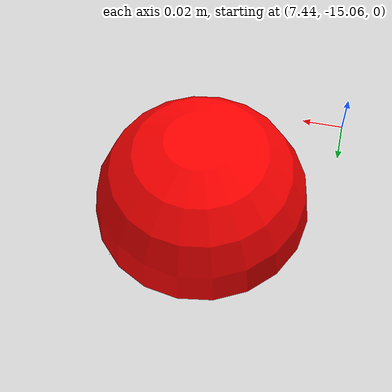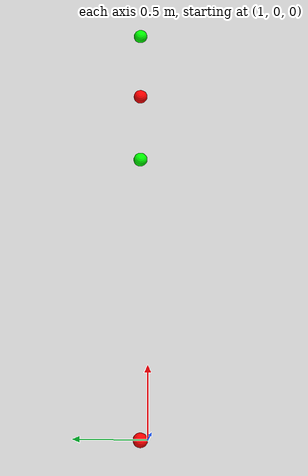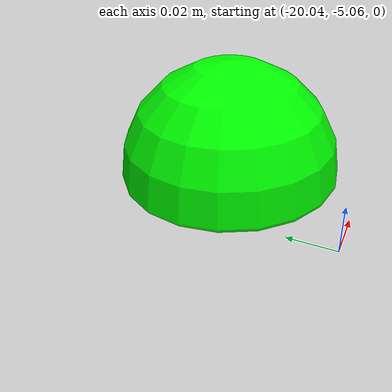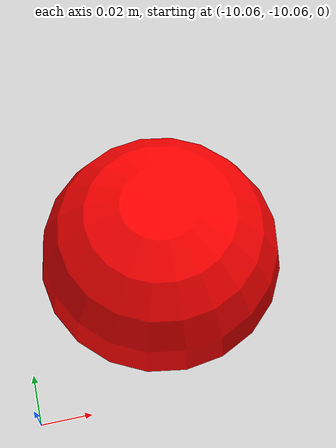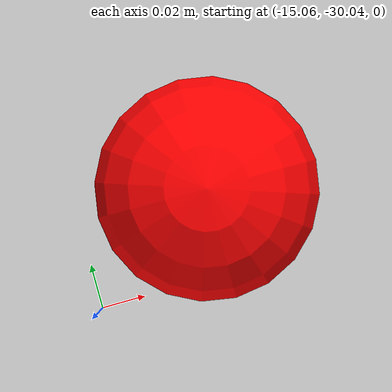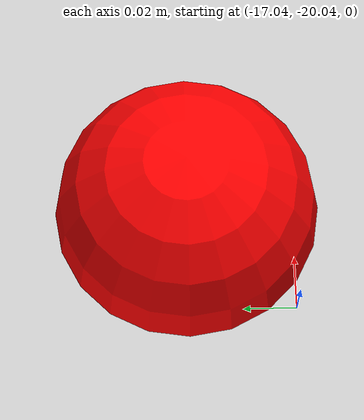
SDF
<sdf version="1.6">
 <world name="default">
  <model name="ground_plane">
   <static>1</static>
   <link name="link">
    <collision name="collision">
     <geometry><plane><normal>0 0 1</normal><size>100 100</size></plane></geometry>
     <surface><friction><ode><mu>100</mu><mu2>50</mu2></ode></friction></surface>
    </collision>
    <visual name="visual">
     <cast_shadows>0</cast_shadows>
     <geometry><plane><normal>0 0 1</normal><size>100 100</size></plane></geometry>
     <material>
      <script><uri>file://media/materials/scripts/gazebo.material</uri><name>Gazebo/Grey</name></script>
     </material>
    </visual>
   </link>
  </model>
  <light name="sun" type="directional">
   <pose>0 0 10 0 -0 0</pose>
   <diffuse>0.8 0.8 0.8 1</diffuse>
   <specular>0.1 0.1 0.1 1</specular>
   <attenuation>
    <range>1000</range>
    <constant>0.9</constant>
    <linear>0.01</linear>
    <quadratic>0.001</quadratic>
   </attenuation>
   <direction>-0.5 0.5 -1</direction>
  </light>
  <gravity>0 0 -9.8</gravity>
  <magnetic_field>6e-06 2.3e-05 -4.2e-05</magnetic_field>
  <atmosphere type="adiabatic"/>
  <physics name="default_physics" default="0" type="ode">
   <max_step_size>0.001</max_step_size>
   <real_time_factor>1</real_time_factor>
   <real_time_update_rate>1000</real_time_update_rate>
  </physics>
  <scene><ambient>0.4 0.4 0.4 1</ambient><background>0.7 0.7 0.7 1</background><shadows>1</shadows></scene>
  <spherical_coordinates>
   <surface_model>EARTH_WGS84</surface_model>
   <latitude_deg>0</latitude_deg>
   <longitude_deg>0</longitude_deg>
   <elevation>0</elevation>
   <heading_deg>0</heading_deg>
  </spherical_coordinates>
  <model name="spherered">
   <pose>1 0.05 0 0 0 0</pose>
   <link name="link">
    <inertial>
     <mass>0.25</mass>
     <inertia><ixx>0.00169</ixx><iyy>0.00169</iyy><izz>0.00169</izz><ixy>0</ixy><ixz>0</ixz><iyz>0</iyz></inertia>
    </inertial>
    <collision name="body_collision"><geometry><sphere><radius>0.05</radius></sphere></geometry></collision>
    <visual name="v1">
     <material>
      <ambient>1 0 0 1.0</ambient>
      <diffuse>1 0 0 1.0</diffuse>
      <specular>1 0 0 1.0</specular>
      <emissive>1 0 0 1.0</emissive>
     </material>
     <geometry><sphere><radius>0.05</radius></sphere></geometry>
    </visual>
   </link>
  </model>
  <model name="spheregreen">
   <pose>3 0.05 0 0 0 0</pose>
   <link name="link">
    <inertial>
     <mass>0.25</mass>
     <inertia><ixx>0.00169</ixx><iyy>0.00169</iyy><izz>0.00169</izz><ixy>0</ixy><ixz>0</ixz><iyz>0</iyz></inertia>
    </inertial>
    <collision name="body_collision"><geometry><sphere><radius>0.05</radius></sphere></geometry></collision>
    <visual name="v1">
     <material>
      <ambient>0 1 0 1.0</ambient>
      <diffuse>0 1 0 1.0</diffuse>
      <specular>0 1 0 1.0</specular>
      <emissive>0 1 0 1.0</emissive>
     </material>
     <geometry><sphere><radius>0.05</radius></sphere></geometry>
    </visual>
   </link>
  </model>
  <model name="spherered">
   <pose>3.5 0.05 0 0 0 0</pose>
   <link name="link">
    <inertial>
     <mass>0.25</mass>
     <inertia><ixx>0.00169</ixx><iyy>0.00169</iyy><izz>0.00169</izz><ixy>0</ixy><ixz>0</ixz><iyz>0</iyz></inertia>
    </inertial>
    <collision name="body_collision"><geometry><sphere><radius>0.05</radius></sphere></geometry></collision>
    <visual name="v1">
     <material>
      <ambient>1 0 0 1.0</ambient>
      <diffuse>1 0 0 1.0</diffuse>
      <specular>1 0 0 1.0</specular>
      <emissive>1 0 0 1.0</emissive>
     </material>
     <geometry><sphere><radius>0.05</radius></sphere></geometry>
    </visual>
   </link>
  </model>
  <model name="spheregreen">
   <pose>4 0.05 0 0 0 0</pose>
   <link name="link">
    <inertial>
     <mass>0.25</mass>
     <inertia><ixx>0.00169</ixx><iyy>0.00169</iyy><izz>0.00169</izz><ixy>0</ixy><ixz>0</ixz><iyz>0</iyz></inertia>
    </inertial>
    <collision name="body_collision"><geometry><sphere><radius>0.05</radius></sphere></geometry></collision>
    <visual name="v1">
     <material>
      <ambient>0 1 0 1.0</ambient>
      <diffuse>0 1 0 1.0</diffuse>
      <specular>0 1 0 1.0</specular>
      <emissive>0 1 0 1.0</emissive>
     </material>
     <geometry><sphere><radius>0.05</radius></sphere></geometry>
    </visual>
   </link>
  </model>
  <model name="spheregreen">
   <pose>-20 -5 0.001 0 0 0</pose>
   <link name="link">
    <inertial>
     <mass>0.25</mass>
     <inertia><ixx>0.00169</ixx><iyy>0.00169</iyy><izz>0.00169</izz><ixy>0</ixy><ixz>0</ixz><iyz>0</iyz></inertia>
    </inertial>
    <collision name="body_collision"><geometry><sphere><radius>0.05</radius></sphere></geometry></collision>
    <visual name="v1">
     <material>
      <ambient>0 1 0 1.0</ambient>
      <diffuse>0 1 0 1.0</diffuse>
      <specular>0 1 0 1.0</specular>
      <emissive>0 1 0 1.0</emissive>
     </material>
     <geometry><sphere><radius>0.05</radius></sphere></geometry>
    </visual>
   </link>
  </model>
  <model name="spheregreen">
   <pose>-20 -5 0.001 0 0 0</pose>
   <link name="link">
    <inertial>
     <mass>0.25</mass>
     <inertia><ixx>0.00169</ixx><iyy>0.00169</iyy><izz>0.00169</izz><ixy>0</ixy><ixz>0</ixz><iyz>0</iyz></inertia>
    </inertial>
    <collision name="body_collision"><geometry><sphere><radius>0.05</radius></sphere></geometry></collision>
    <visual name="v1">
     <material>
      <ambient>0 1 0 1.0</ambient>
      <diffuse>0 1 0 1.0</diffuse>
      <specular>0 1 0 1.0</specular>
      <emissive>0 1 0 1.0</emissive>
     </material>
     <geometry><sphere><radius>0.05</radius></sphere></geometry>
    </visual>
   </link>
  </model>
  <model name="spherered">
   <pose>-17 -20 0 0 0 0</pose>
   <link name="link">
    <inertial>
     <mass>0.25</mass>
     <inertia><ixx>0.00169</ixx><iyy>0.00169</iyy><izz>0.00169</izz><ixy>0</ixy><ixz>0</ixz><iyz>0</iyz></inertia>
    </inertial>
    <collision name="body_collision"><geometry><sphere><radius>0.05</radius></sphere></geometry></collision>
    <visual name="v1">
     <material>
      <ambient>1 0 0 1.0</ambient>
      <diffuse>1 0 0 1.0</diffuse>
      <specular>1 0 0 1.0</specular>
      <emissive>1 0 0 1.0</emissive>
     </material>
     <geometry><sphere><radius>0.05</radius></sphere></geometry>
    </visual>
   </link>
  </model>
  <model name="spheregreen">
   <pose>10 0.05 0 0 0 0</pose>
   <link name="link">
    <inertial>
     <mass>0.25</mass>
     <inertia><ixx>0.00169</ixx><iyy>0.00169</iyy><izz>0.00169</izz><ixy>0</ixy><ixz>0</ixz><iyz>0</iyz></inertia>
    </inertial>
    <collision name="body_collision"><geometry><sphere><radius>0.05</radius></sphere></geometry></collision>
    <visual name="v1">
     <material>
      <ambient>0 1 0 1.0</ambient>
      <diffuse>0 1 0 1.0</diffuse>
      <specular>0 1 0 1.0</specular>
      <emissive>0 1 0 1.0</emissive>
     </material>
     <geometry><sphere><radius>0.05</radius></sphere></geometry>
    </visual>
   </link>
  </model>
  <model name="spherered">
   <pose>5 -30 0.001 0 0 0</pose>
   <link name="link">
    <inertial>
     <mass>0.25</mass>
     <inertia><ixx>0.00169</ixx><iyy>0.00169</iyy><izz>0.00169</izz><ixy>0</ixy><ixz>0</ixz><iyz>0</iyz></inertia>
    </inertial>
    <collision name="body_collision"><geometry><sphere><radius>0.05</radius></sphere></geometry></collision>
    <visual name="v1">
     <material>
      <ambient>1 0 0 1.0</ambient>
      <diffuse>1 0 0 1.0</diffuse>
      <specular>1 0 0 1.0</specular>
      <emissive>1 0 0 1.0</emissive>
     </material>
     <geometry><sphere><radius>0.05</radius></sphere></geometry>
    </visual>
   </link>
  </model>
  <model name="spherered">
   <pose>7.5 -15 0.001 0 0 0</pose>
   <link name="link">
    <inertial>
     <mass>0.25</mass>
     <inertia><ixx>0.00169</ixx><iyy>0.00169</iyy><izz>0.00169</izz><ixy>0</ixy><ixz>0</ixz><iyz>0</iyz></inertia>
    </inertial>
    <collision name="body_collision"><geometry><sphere><radius>0.05</radius></sphere></geometry></collision>
    <visual name="v1">
     <material>
      <ambient>1 0 0 1.0</ambient>
      <diffuse>1 0 0 1.0</diffuse>
      <specular>1 0 0 1.0</specular>
      <emissive>1 0 0 1.0</emissive>
     </material>
     <geometry><sphere><radius>0.05</radius></sphere></geometry>
    </visual>
   </link>
  </model>
  <model name="spheregreen">
   <pose>-10 -30 0 0 0 0</pose>
   <link name="link">
    <inertial>
     <mass>0.25</mass>
     <inertia><ixx>0.00169</ixx><iyy>0.00169</iyy><izz>0.00169</izz><ixy>0</ixy><ixz>0</ixz><iyz>0</iyz></inertia>
    </inertial>
    <collision name="body_collision"><geometry><sphere><radius>0.05</radius></sphere></geometry></collision>
    <visual name="v1">
     <material>
      <ambient>0 1 0 1.0</ambient>
      <diffuse>0 1 0 1.0</diffuse>
      <specular>0 1 0 1.0</specular>
      <emissive>0 1 0 1.0</emissive>
     </material>
     <geometry><sphere><radius>0.05</radius></sphere></geometry>
    </visual>
   </link>
  </model>
  <model name="spherered">
   <pose>-15 -30 0.001 0 0 0</pose>
   <link name="link">
    <inertial>
     <mass>0.25</mass>
     <inertia><ixx>0.00169</ixx><iyy>0.00169</iyy><izz>0.00169</izz><ixy>0</ixy><ixz>0</ixz><iyz>0</iyz></inertia>
    </inertial>
    <collision name="body_collision"><geometry><sphere><radius>0.05</radius></sphere></geometry></collision>
    <visual name="v1">
     <material>
      <ambient>1 0 0 1.0</ambient>
      <diffuse>1 0 0 1.0</diffuse>
      <specular>1 0 0 1.0</specular>
      <emissive>1 0 0 1.0</emissive>
     </material>
     <geometry><sphere><radius>0.05</radius></sphere></geometry>
    </visual>
   </link>
  </model>
  <model name="spheregreen">
   <pose>-0.5 -14.7 0.001 0 0 0</pose>
   <link name="link">
    <inertial>
     <mass>0.25</mass>
     <inertia><ixx>0.00169</ixx><iyy>0.00169</iyy><izz>0.00169</izz><ixy>0</ixy><ixz>0</ixz><iyz>0</iyz></inertia>
    </inertial>
    <collision name="body_collision"><geometry><sphere><radius>0.05</radius></sphere></geometry></collision>
    <visual name="v1">
     <material>
      <ambient>0 1 0 1.0</ambient>
      <diffuse>0 1 0 1.0</diffuse>
      <specular>0 1 0 1.0</specular>
      <emissive>0 1 0 1.0</emissive>
     </material>
     <geometry><sphere><radius>0.05</radius></sphere></geometry>
    </visual>
   </link>
  </model>
  <model name="spherered">
   <pose>-10 -10 0.001 0 0 0</pose>
   <link name="link">
    <inertial>
     <mass>0.25</mass>
     <inertia><ixx>0.00169</ixx><iyy>0.00169</iyy><izz>0.00169</izz><ixy>0</ixy><ixz>0</ixz><iyz>0</iyz></inertia>
    </inertial>
    <collision name="body_collision"><geometry><sphere><radius>0.05</radius></sphere></geometry></collision>
    <visual name="v1">
     <material>
      <ambient>1 0 0 1.0</ambient>
      <diffuse>1 0 0 1.0</diffuse>
      <specular>1 0 0 1.0</specular>
      <emissive>1 0 0 1.0</emissive>
     </material>
     <geometry><sphere><radius>0.05</radius></sphere></geometry>
    </visual>
   </link>
  </model>
 </world>
</sdf>
